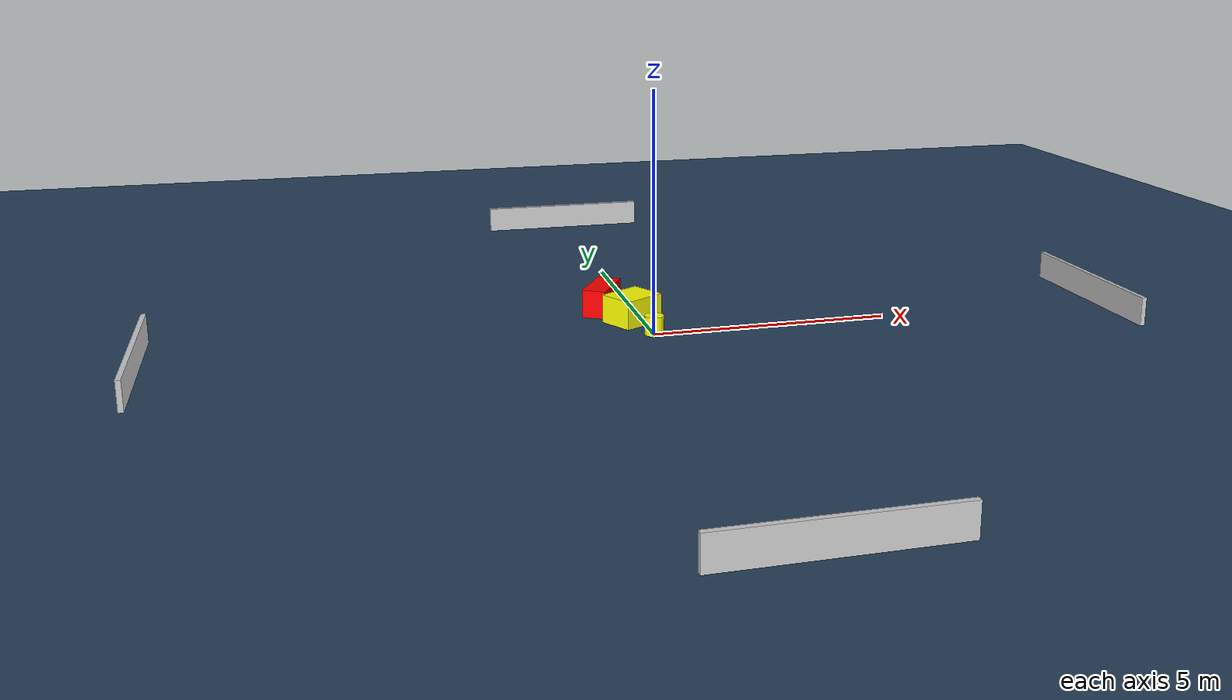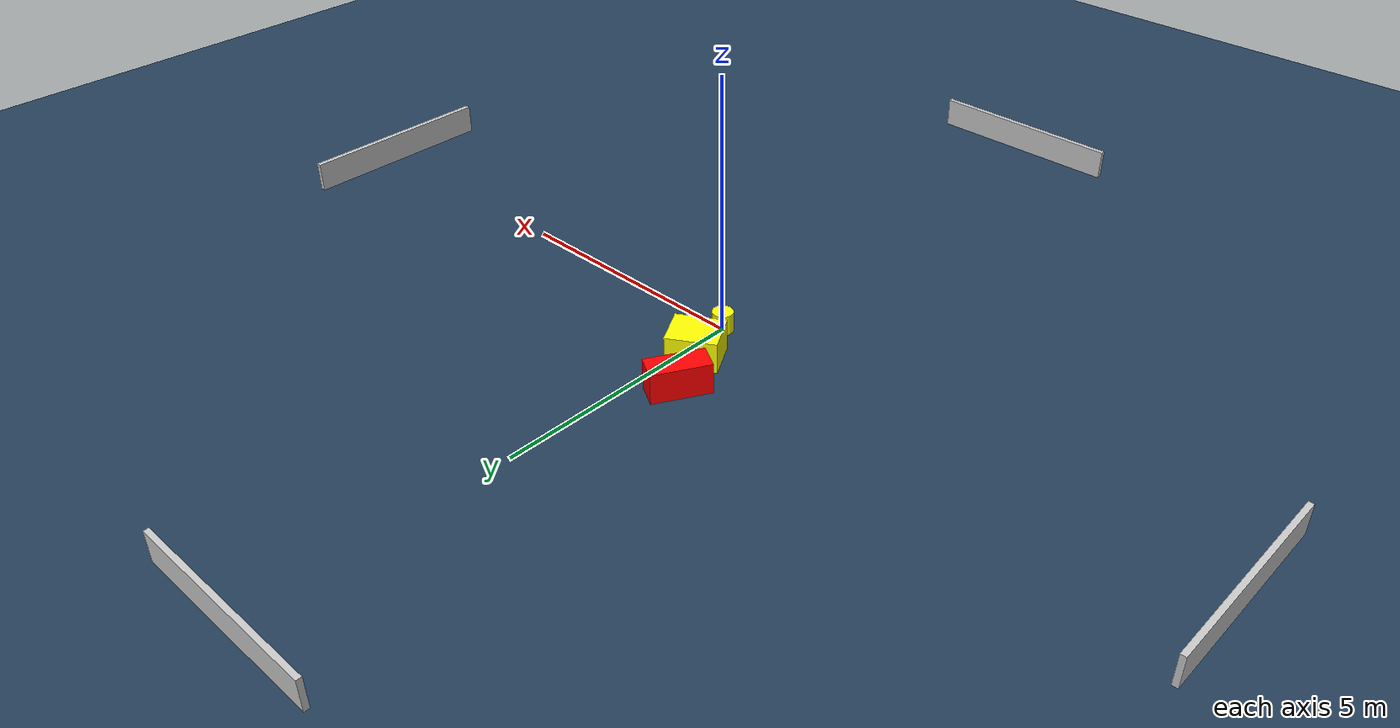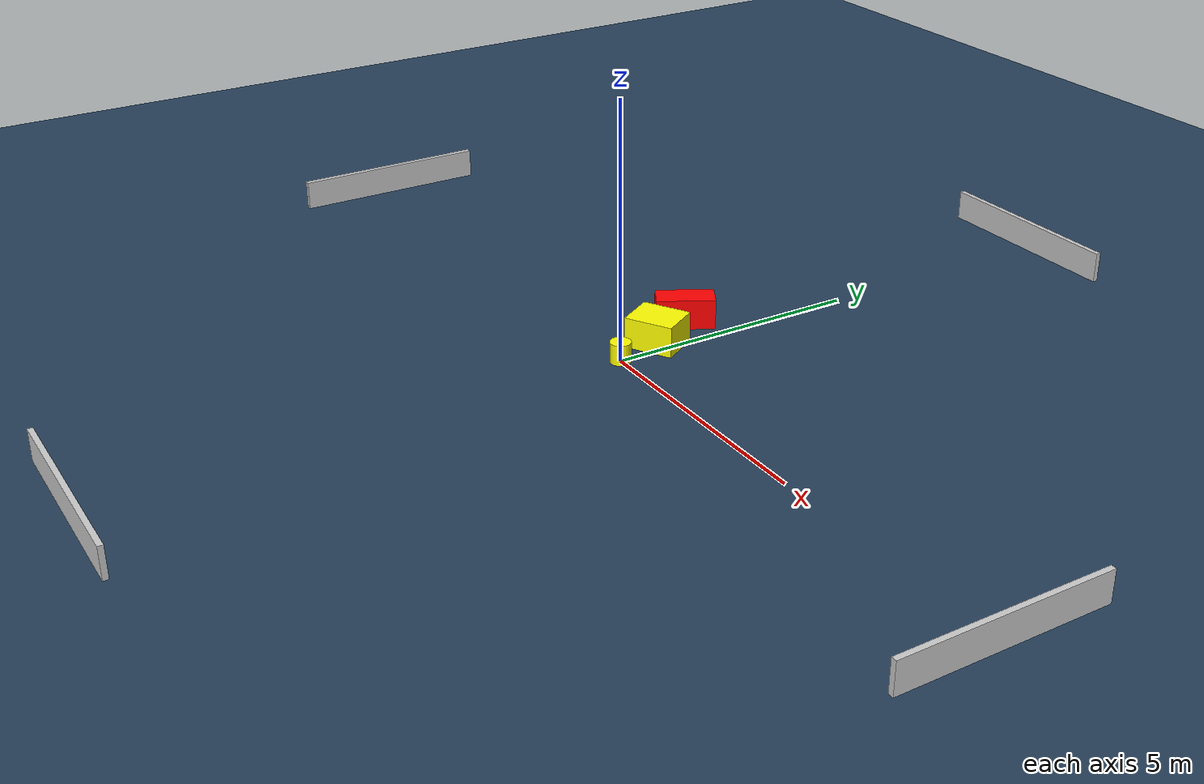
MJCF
<?xml version="1.0" ?>
<mujoco model="generated_environment">
  <option timestep="0.01" integrator="RK4" cone="elliptic"/>
  <default>
    <geom density="1"/>
  </default>
  <asset>
    <texture builtin="gradient" height="3072" name="skybox" rgb1="0.3 0.5 0.7" rgb2="0 0 0" type="skybox" width="512"/>
    <texture builtin="checker" height="300" name="groundplane" rgb1="0.2 0.3 0.4" rgb2="0.1 0.2 0.3" type="2d" width="300"/>
    <material name="groundplane" reflectance="0.2" texrepeat="5 5" texture="groundplane"/>
  </asset>
  <worldbody>
    <light dir="0 0 -1" directional="true" pos="0 0 1.5"/>
    <geom condim="3" friction="0.5 0.005 0.001" material="groundplane" name="floor" pos="0 0 0" size="0 0 0.05" type="plane"/>
    <body name="walls">
      <geom name="wall_1" condim="4" pos="-10.0 0.0 0.3" rgba="0.800000011920929 0.800000011920929 0.800000011920929 1.0" size="0.05 2.0 0.3" type="box"/>
      <geom name="wall_2" condim="4" pos="10.0 0.0 0.3" rgba="0.800000011920929 0.800000011920929 0.800000011920929 1.0" size="0.05 2.0 0.3" type="box"/>
      <geom name="wall_3" condim="4" pos="0.0 -10.0 0.3" rgba="0.800000011920929 0.800000011920929 0.800000011920929 1.0" size="2.0 0.05 0.3" type="box"/>
      <geom name="wall_4" condim="4" pos="0.0 10.0 0.3" rgba="0.800000011920929 0.800000011920929 0.800000011920929 1.0" size="2.0 0.05 0.3" type="box"/>
    </body>
    <body name="robot">
      <joint name="joint_x" type="slide" pos="0 0 0" axis="1 0 0"/>
      <joint name="joint_y" type="slide" pos="0 0 0" axis="0 1 0"/>
      <geom name="robot" type="cylinder" pos="0.0 0.0 0.2" size="0.2 0.2 0.0" mass="5.0" friction="1.0 0.005 0.0001" condim="4" rgba="1.0 1.0 0.0 1.0"/>
    </body>
    <body name="obstacle_1_movable">
      <geom name="obstacle_1_movable" condim="4" pos="-0.2397537662629134 0.952077511030222 0.3" euler="0 0 300.204421200666" friction="0.0 0.005 0.001" rgba="1.0 1.0 0.0 1.0" size="0.39482227086186106 0.4788923646979032 0.3" type="box" mass="0.1"/>
      <joint type="free"/>
    </body>
    <body name="obstacle_2_static">
      <geom name="obstacle_2_static" condim="4" pos="-0.6942732516017031 1.863853042520381 0.3" euler="0 0 60.417429097420516" friction="0.0 0.005 0.001" rgba="1.0 0.0 0.0 1.0" size="0.5620830486892946 0.25411826916661084 0.3" type="box"/>
    </body>
  </worldbody>
  <actuator>
    <motor name="actuator_x" joint="joint_x" gear="1" ctrlrange="-1 1"/>
    <motor name="actuator_y" joint="joint_y" gear="1" ctrlrange="-1 1"/>
  </actuator>
</mujoco>
